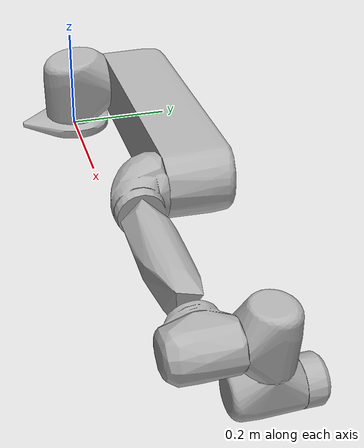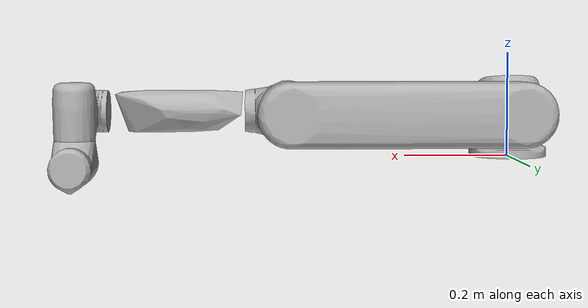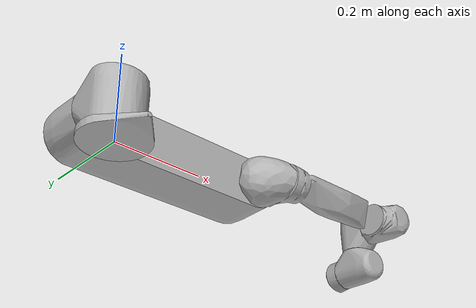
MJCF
<?xml version='1.0' encoding='utf-8'?>
<mujoco model="ur5_robot">
  <compiler angle="radian" />
  <asset>
    <mesh name="base" file="base.stl" />
    <mesh name="shoulder" file="shoulder.stl" />
    <mesh name="upperarm" file="upperarm.stl" />
    <mesh name="forearm" file="forearm.stl" />
    <mesh name="wrist1" file="wrist1.stl" />
    <mesh name="wrist2" file="wrist2.stl" />
    <mesh name="wrist3" file="wrist3.stl" />
  </asset>
  <worldbody>
    <geom pos="0 0 0" quat="-1 0 0 0" type="mesh" rgba="0.7 0.7 0.7 1" mesh="base" />
    <body name="shoulder_link" pos="0 0 0.089159" quat="0 0 0 1">
      <inertial pos="0 -0.00193 -0.02561" mass="3.7" diaginertia="0.0149724 0.0149724 0.0104063" />
      <joint name="shoulder_pan_joint" pos="0 0 0" axis="0 0 1" range="-6.28319 6.28319" actuatorfrcrange="-150 150" />
      <geom quat="0 0 0 1" type="mesh" rgba="0.7 0.7 0.7 1" mesh="shoulder" />
      <body name="upper_arm_link" quat="0.707107 0.707107 0 0">
        <inertial pos="-0.2125 0 0.11336" mass="8.393" diaginertia="0.133886 0.133886 0.0151074" />
        <joint name="shoulder_lift_joint" pos="0 0 0" axis="0 0 1" range="-6.28319 6.28319" actuatorfrcrange="-150 150" />
        <geom pos="0 0 0.13585" quat="0.5 0.5 -0.5 -0.5" type="mesh" rgba="0.7 0.7 0.7 1" mesh="upperarm" />
        <body name="forearm_link" pos="-0.425 0 0">
          <inertial pos="-0.24225 0 0.0265" mass="2.33" diaginertia="0.0312168 0.0312168 0.004095" />
          <joint name="elbow_joint" pos="0 0 0" axis="0 0 1" range="-3.14159 3.14159" actuatorfrcrange="-150 150" />
          <geom pos="0 0 0.0165" quat="0.5 0.5 -0.5 -0.5" type="mesh" rgba="0.7 0.7 0.7 1" mesh="forearm" />
          <body name="wrist_1_link" pos="-0.39225 0 0.10915">
            <inertial pos="0 -0.01634 -0.0018" quat="0.5 0.5 -0.5 0.5" mass="1.219" diaginertia="0.0021942 0.00201389 0.00201389" />
            <joint name="wrist_1_joint" pos="0 0 0" axis="0 0 1" range="-6.28319 6.28319" actuatorfrcrange="-28 28" />
            <geom pos="0 0 -0.093" quat="0.707107 0.707107 0 0" type="mesh" rgba="0.7 0.7 0.7 1" mesh="wrist1" />
            <body name="wrist_2_link" pos="0 -0.09465 -1.9413e-11" quat="0.707107 0.707107 0 0">
              <inertial pos="0 0.01634 -0.0018" quat="0.5 0.5 -0.5 0.5" mass="1.219" diaginertia="0.0021942 0.00183104 0.00183104" />
              <joint name="wrist_2_joint" pos="0 0 0" axis="0 0 1" range="-6.28319 6.28319" actuatorfrcrange="-28 28" />
              <geom pos="0 0 -0.095" quat="1 0 0 0" type="mesh" rgba="0.7 0.7 0.7 1" mesh="wrist2" />
              <body name="wrist_3_link" pos="0 0.0823 -1.688e-11" quat="0.707107 -0.707107 0 0">
                <inertial pos="0 0 -0.001159" quat="0.5 0.5 -0.5 0.5" mass="0.1879" diaginertia="0.000132117 8.06248e-05 8.06248e-05" />
                <joint name="wrist_3_joint" pos="0 0 0" axis="0 0 1" range="-6.28319 6.28319" actuatorfrcrange="-28 28" />
                <geom pos="0 0 -0.0818" quat="0.707107 0.707107 0 0" type="mesh" rgba="0.7 0.7 0.7 1" mesh="wrist3" />
              </body>
            </body>
          </body>
        </body>
      </body>
    </body>
  </worldbody>
  <actuator>
    <general name="shoulder_pan_joint_actuator" joint="shoulder_pan_joint" gainprm="1" ctrlrange="-3.14 3.14" />
    <general name="shoulder_lift_joint_actuator" joint="shoulder_lift_joint" gainprm="1" ctrlrange="-3.14 3.14" />
    <general name="elbow_joint_actuator" joint="elbow_joint" gainprm="1" ctrlrange="-3.14 3.14" />
    <general name="wrist_1_joint_actuator" joint="wrist_1_joint" gainprm="1" ctrlrange="-3.14 3.14" />
    <general name="wrist_2_joint_actuator" joint="wrist_2_joint" gainprm="1" ctrlrange="-3.14 3.14" />
    <general name="wrist_3_joint_actuator" joint="wrist_3_joint" gainprm="1" ctrlrange="-3.14 3.14" />
  </actuator>
  <keyframe>
    <key name="home" qpos="0 0 0 0 0 0" />
  </keyframe>
</mujoco>
